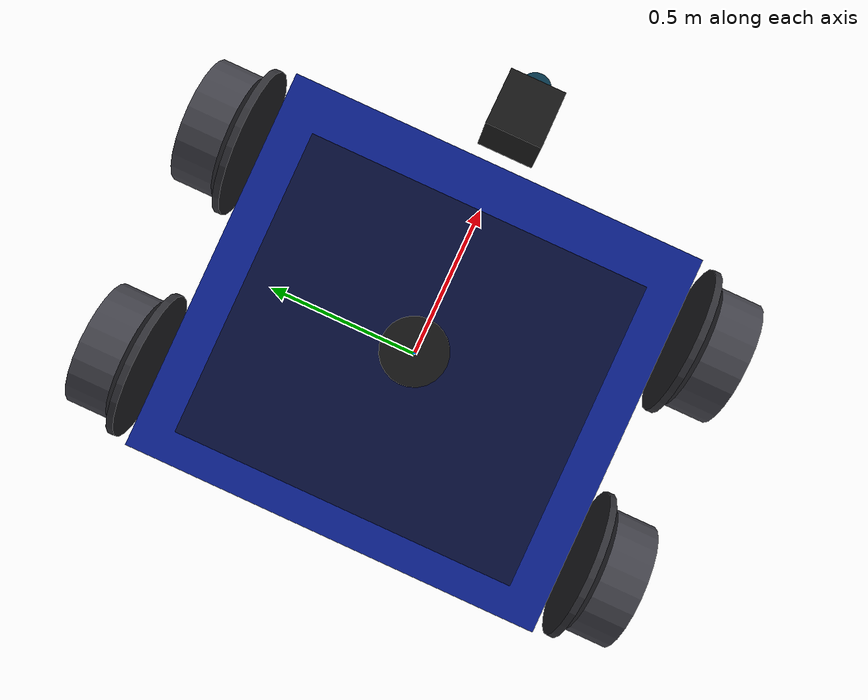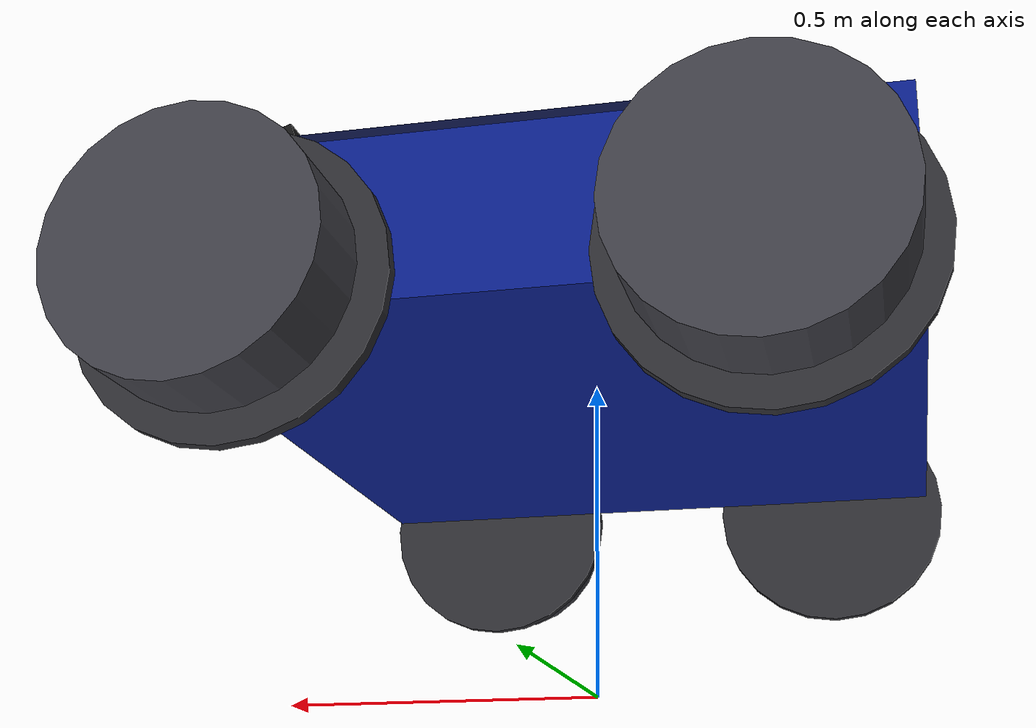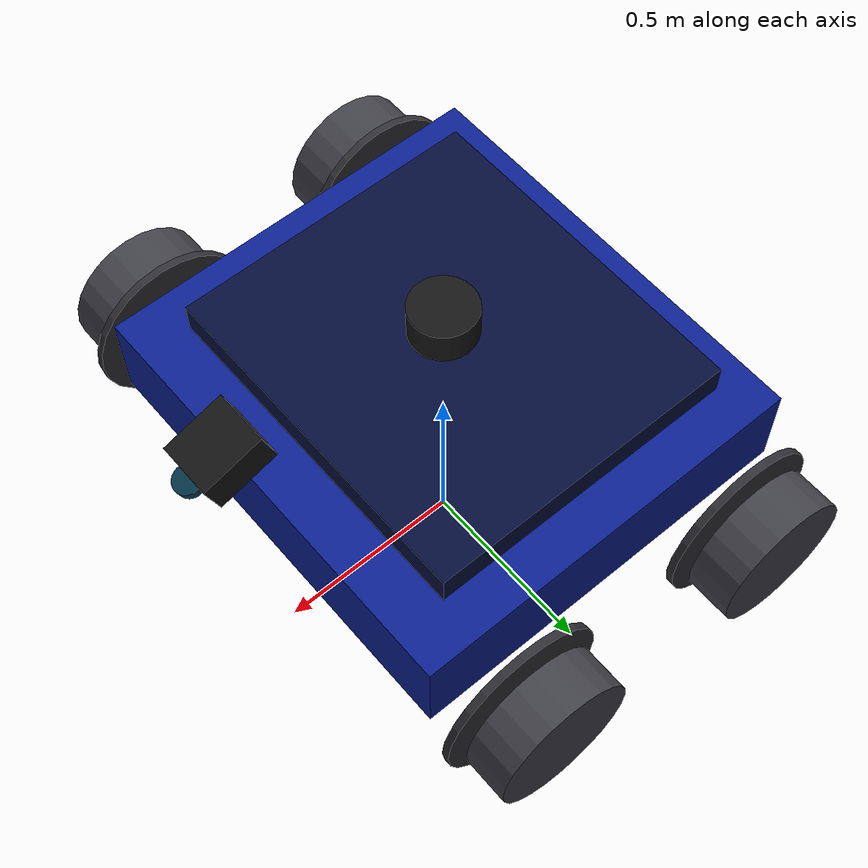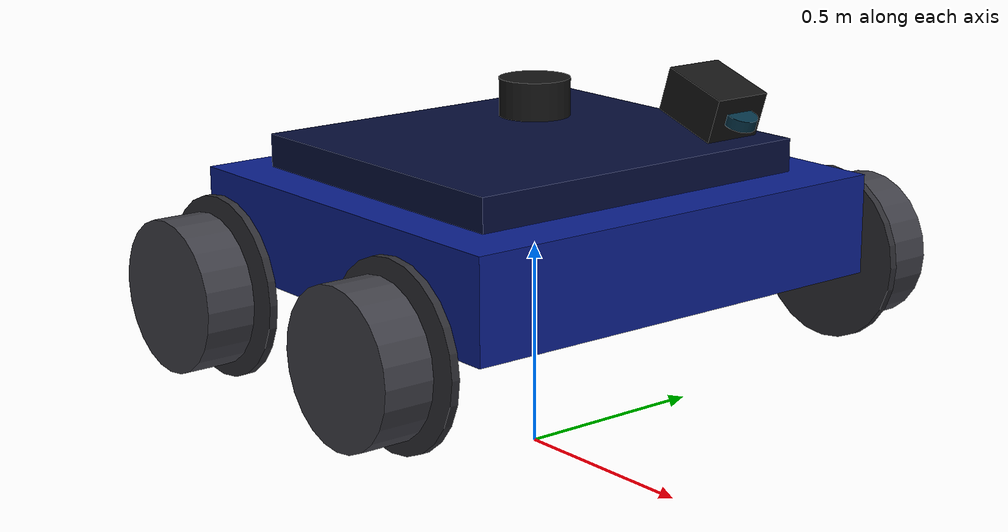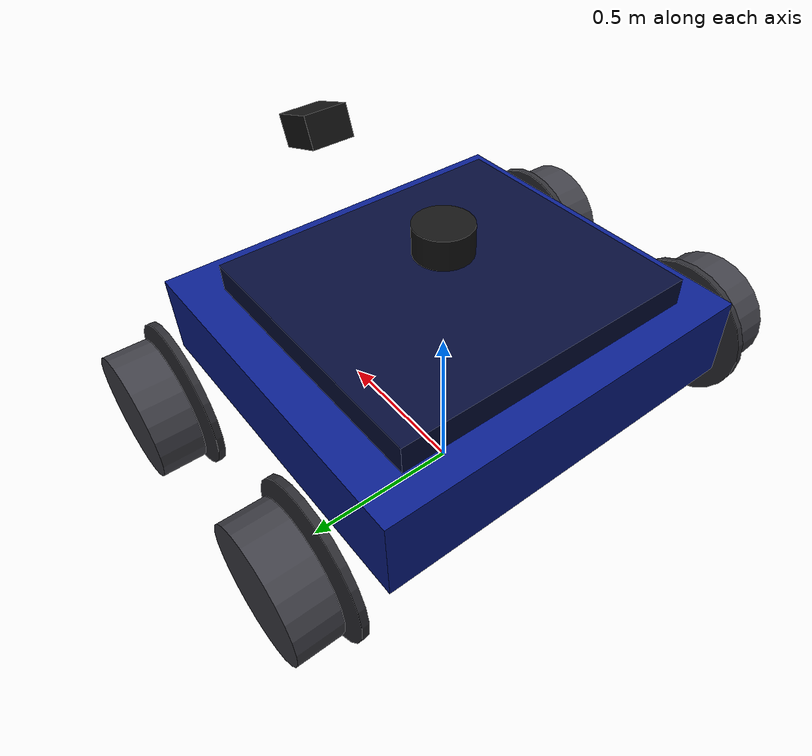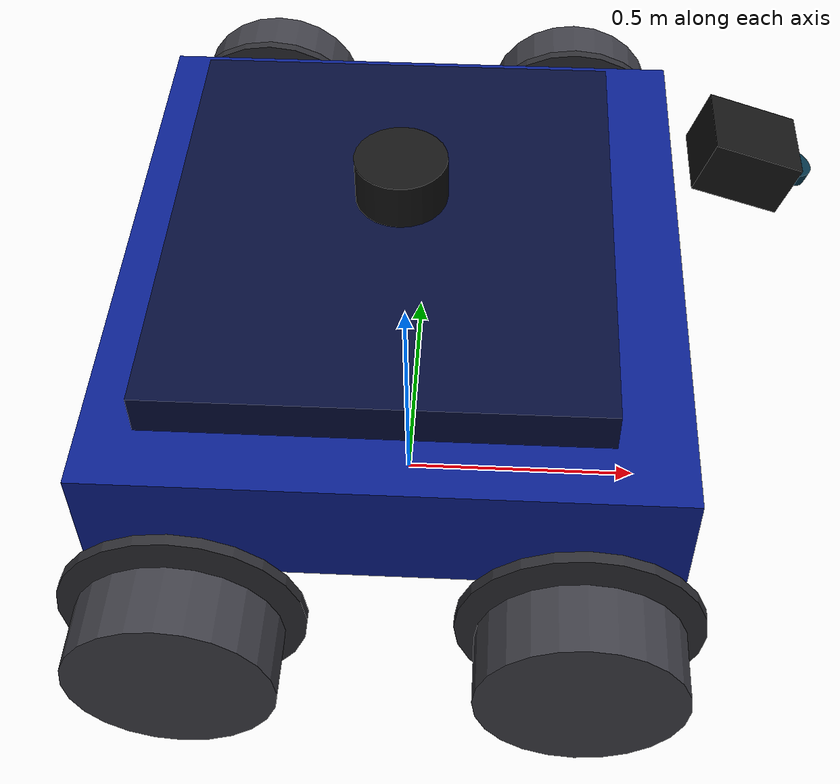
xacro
<?xml version="1.0"?>
<robot name="railway_rover" xmlns:xacro="http://www.ros.org/wiki/xacro">

  <!-- ROBOT PARAMETERS                                         -->

  <xacro:property name="base_length" value="1.05"/>
  <xacro:property name="base_width"  value="1.15"/>
  <xacro:property name="base_height" value="0.24"/>

  <xacro:property name="wheel_radius"       value="0.18"/>
  <xacro:property name="wheel_tread_width"  value="0.12"/>
  <xacro:property name="flange_radius"      value="0.215"/>
  <xacro:property name="flange_width"       value="0.02"/>
  <xacro:property name="wheel_mass"         value="2.0"/>

  <xacro:property name="base_mass" value="20.0"/>

  <!-- Railway geometry -->
  <xacro:property name="rail_gauge" value="1.50"/>
  <xacro:property name="wheel_y"    value="0.75"/>
  <xacro:property name="rail_top_z" value="0.26"/>

  <!-- MATERIALS                                                 -->

  <material name="rover_blue">
    <color rgba="0.04 0.12 0.55 1.0"/>
  </material>

  <material name="rover_blue_dark">
    <color rgba="0.02 0.05 0.22 1.0"/>
  </material>

  <material name="wheel_metal">
    <color rgba="0.25 0.25 0.28 1.0"/>
  </material>

  <material name="wheel_flange_mat">
    <color rgba="0.18 0.18 0.20 1.0"/>
  </material>

  <material name="sensor_dark">
    <color rgba="0.08 0.08 0.08 1.0"/>
  </material>

  <material name="sensor_glass">
    <color rgba="0.02 0.20 0.28 1.0"/>
  </material>

  <!-- BASE FOOTPRINT                                             -->

  <link name="base_footprint"/>

  <!-- MAIN CHASSIS                                               -->

  <link name="base_link">

    <inertial>
      <mass value="${base_mass}"/>
      <origin xyz="0 0 0"/>
      <inertia
        ixx="2.0"
        ixy="0"
        ixz="0"
        iyy="3.0"
        iyz="0"
        izz="3.5"/>
    </inertial>

    <visual name="main_chassis">
      <origin xyz="0 0 0"/>
      <geometry>
        <box size="${base_length} ${base_width} ${base_height}"/>
      </geometry>
      <material name="rover_blue"/>
    </visual>

    <visual name="upper_deck">
      <origin xyz="-0.02 0 0.15"/>
      <geometry>
        <box size="0.82 0.92 0.10"/>
      </geometry>
      <material name="rover_blue_dark"/>
    </visual>

    <collision name="main_collision">
      <origin xyz="0 0 0"/>
      <geometry>
        <box size="${base_length} ${base_width} ${base_height}"/>
      </geometry>
    </collision>

  </link>

  <!-- Base is positioned above the rail-running wheels. -->
  <joint name="base_footprint_joint" type="fixed">
    <parent link="base_footprint"/>
    <child link="base_link"/>
    <origin
      xyz="0 0 ${rail_top_z + wheel_radius + base_height/2}"
      rpy="0 0 0"/>
  </joint>

  <!-- FLANGED RAILWAY WHEELS                                    -->

  <xacro:macro name="wheel" params="name x y flange_offset">

    <link name="${name}_wheel">

      <inertial>
        <mass value="${wheel_mass}"/>
        <origin xyz="0 0 0"/>
        <inertia
          ixx="0.03"
          ixy="0"
          ixz="0"
          iyy="0.03"
          iyz="0"
          izz="0.03"/>
      </inertial>

      <!-- Wheel tread running on top of rail head -->
      <visual name="tread_visual">
        <origin xyz="0 0 0" rpy="${pi/2} 0 0"/>
        <geometry>
          <cylinder
            radius="${wheel_radius}"
            length="${wheel_tread_width}"/>
        </geometry>
        <material name="wheel_metal"/>
      </visual>

      <!-- Railway wheel flange (inner rim) preventing derailment -->
      <visual name="flange_visual">
        <origin xyz="0 ${flange_offset} 0" rpy="${pi/2} 0 0"/>
        <geometry>
          <cylinder
            radius="${flange_radius}"
            length="${flange_width}"/>
        </geometry>
        <material name="wheel_flange_mat"/>
      </visual>

      <!-- Tread collision -->
      <collision name="tread_collision">
        <origin xyz="0 0 0" rpy="${pi/2} 0 0"/>
        <geometry>
          <cylinder
            radius="${wheel_radius}"
            length="${wheel_tread_width}"/>
        </geometry>
      </collision>

      <!-- Flange collision -->
      <collision name="flange_collision">
        <origin xyz="0 ${flange_offset} 0" rpy="${pi/2} 0 0"/>
        <geometry>
          <cylinder
            radius="${flange_radius}"
            length="${flange_width}"/>
        </geometry>
      </collision>

    </link>

    <!-- Calibrated contact dynamics: strong forward traction, smooth lateral sliding -->
    <gazebo reference="${name}_wheel">
      <mu1>1.0</mu1>
      <mu2>0.05</mu2>
      <fdir1>1 0 0</fdir1>
      <kp>1000000.0</kp>
      <kd>10.0</kd>
      <minDepth>0.001</minDepth>
      <maxVel>5.0</maxVel>
      <material>Gazebo/DarkGrey</material>
    </gazebo>

    <joint name="${name}_wheel_joint" type="continuous">
      <parent link="base_link"/>
      <child link="${name}_wheel"/>
      <origin
        xyz="${x} ${y} ${-base_height/2}"
        rpy="0 0 0"/>
      <axis xyz="0 1 0"/>
    </joint>

  </xacro:macro>

  <!-- Left wheels: flange offset is -0.075 (toward center of track) -->
  <xacro:wheel
    name="rear_left"
    x="-0.34"
    y="${wheel_y}"
    flange_offset="-0.09"/>

  <xacro:wheel
    name="front_left"
    x="0.34"
    y="${wheel_y}"
    flange_offset="-0.09"/>

  <!-- Right wheels: flange offset is +0.075 (toward center of track) -->
  <xacro:wheel
    name="rear_right"
    x="-0.34"
    y="-${wheel_y}"
    flange_offset="0.09"/>

  <xacro:wheel
    name="front_right"
    x="0.34"
    y="-${wheel_y}"
    flange_offset="0.09"/>

  <!-- CAMERA LINK & PAN JOINT                                   -->

  <link name="camera_link">

    <inertial>
      <origin xyz="0 0 0" rpy="0 0 0"/>
      <mass value="0.15"/>
      <inertia
        ixx="0.0001" ixy="0.0" ixz="0.0"
        iyy="0.0001" iyz="0.0"
        izz="0.0001"/>
    </inertial>

    <visual name="camera_body">
      <origin xyz="0 0 0" rpy="0 0.32 0"/>
      <geometry>
        <box size="0.16 0.14 0.10"/>
      </geometry>
      <material name="sensor_dark"/>
    </visual>

    <visual name="camera_lens">
      <origin xyz="0.085 0 -0.027" rpy="0 0.32 0"/>
      <geometry>
        <cylinder radius="0.035" length="0.025"/>
      </geometry>
      <material name="sensor_glass"/>
    </visual>

  </link>

  <!-- Stepper-driven camera pan -->
  <joint name="camera_pan_joint" type="revolute">
    <parent link="base_link"/>
    <child link="camera_link"/>
    <origin xyz="0.60 0 0.38" rpy="0 0 0"/>
    <axis xyz="0 0 1"/>
    <limit
      lower="-0.523599"
      upper="0.523599"
      effort="10.0"
      velocity="1.0"/>
    <dynamics
      damping="0.5"
      friction="0.1"/>
  </joint>

  <!-- Optical sensor mount angled downward 18.3 deg for track inspection -->
  <link name="camera_sensor_link">
    <inertial>
      <origin xyz="0 0 0" rpy="0 0 0"/>
      <mass value="0.01"/>
      <inertia
        ixx="0.000001" ixy="0.0" ixz="0.0"
        iyy="0.000001" iyz="0.0"
        izz="0.000001"/>
    </inertial>
  </link>

  <joint name="camera_sensor_joint" type="fixed">
    <parent link="camera_link"/>
    <child link="camera_sensor_link"/>
    <origin xyz="0.14 0 0" rpy="0 0.32 0"/>
  </joint>

  <!-- Standard ROS optical frame -->
  <link name="camera_optical_frame"/>

  <joint name="camera_optical_joint" type="fixed">
    <parent link="camera_sensor_link"/>
    <child link="camera_optical_frame"/>
    <origin xyz="0 0 0" rpy="-1.5708 0 -1.5708"/>
  </joint>

  <!-- Gazebo ROS control interface -->
  <gazebo>
    <plugin name="gazebo_ros_control" filename="libgazebo_ros_control.so">
      <robotNamespace>/railway_rover</robotNamespace>
      <robotParam>/robot_description</robotParam>
    </plugin>
  </gazebo>

  <!-- Camera pan motor transmission -->
  <transmission name="camera_pan_transmission">
    <type>transmission_interface/SimpleTransmission</type>
    <joint name="camera_pan_joint">
      <hardwareInterface>hardware_interface/PositionJointInterface</hardwareInterface>
    </joint>
    <actuator name="camera_pan_motor">
      <hardwareInterface>hardware_interface/PositionJointInterface</hardwareInterface>
      <mechanicalReduction>1</mechanicalReduction>
    </actuator>
  </transmission>

  <!-- 3D LIDAR                                                  -->

  <link name="lidar_link">
    <visual name="lidar_body">
      <geometry>
        <cylinder
          radius="0.085"
          length="0.09"/>
      </geometry>
      <material name="sensor_dark"/>
    </visual>
  </link>

  <joint name="lidar_joint" type="fixed">
    <parent link="base_link"/>
    <child link="lidar_link"/>
    <origin
      xyz="0 0 0.30"
      rpy="0 0 0"/>
  </joint>

  <!-- IMU                                                        -->

  <link name="imu_link">
    <visual>
      <geometry>
        <box size="0.07 0.05 0.025"/>
      </geometry>
      <material name="sensor_dark"/>
    </visual>
  </link>

  <joint name="imu_joint" type="fixed">
    <parent link="base_link"/>
    <child link="imu_link"/>
    <origin
      xyz="-0.20 0 0.02"
      rpy="0 0 0"/>
  </joint>

  <!-- GAZEBO RGB CAMERA                                         -->

  <gazebo reference="camera_sensor_link">
    <preserveFixedJoint>true</preserveFixedJoint>

    <sensor type="camera" name="rgb_camera">
      <update_rate>15</update_rate>
      <camera>
        <horizontal_fov>1.047</horizontal_fov>
        <image>
          <width>640</width>
          <height>480</height>
          <format>R8G8B8</format>
        </image>
        <clip>
          <near>0.05</near>
          <far>30.0</far>
        </clip>
      </camera>

      <plugin
        name="camera_controller"
        filename="libgazebo_ros_camera.so">
        <cameraName>railway_rover_camera</cameraName>
        <imageTopicName>/camera/image_raw</imageTopicName>
        <cameraInfoTopicName>/camera/camera_info</cameraInfoTopicName>
        <frameName>camera_optical_frame</frameName>
      </plugin>
    </sensor>
  </gazebo>

  <!-- GAZEBO 3D LIDAR                                           -->

  <gazebo reference="lidar_link">
    <sensor type="ray" name="lidar_sensor">
      <update_rate>10</update_rate>
      <ray>
        <scan>
          <horizontal>
            <samples>360</samples>
            <resolution>1</resolution>
            <min_angle>-3.14159</min_angle>
            <max_angle>3.14159</max_angle>
          </horizontal>
          <vertical>
            <samples>16</samples>
            <resolution>1</resolution>
            <min_angle>-0.35</min_angle>
            <max_angle>0.35</max_angle>
          </vertical>
        </scan>
        <range>
          <min>0.12</min>
          <max>25.0</max>
          <resolution>0.01</resolution>
        </range>
      </ray>

      <plugin
        name="lidar_controller"
        filename="libgazebo_ros_block_laser.so">
        <topicName>/lidar/points</topicName>
        <frameName>lidar_link</frameName>
      </plugin>
    </sensor>
  </gazebo>

  <!-- 4-WHEEL DRIVE CONTROLLER (SKID STEER)                     -->

  <gazebo>
    <plugin name="skid_steer_drive_controller" filename="libgazebo_ros_skid_steer_drive.so">
      <updateRate>50.0</updateRate>
      <robotNamespace>/</robotNamespace>
      <leftFrontJoint>front_left_wheel_joint</leftFrontJoint>
      <rightFrontJoint>front_right_wheel_joint</rightFrontJoint>
      <leftRearJoint>rear_left_wheel_joint</leftRearJoint>
      <rightRearJoint>rear_right_wheel_joint</rightRearJoint>
      <wheelSeparation>1.50</wheelSeparation>
      <wheelDiameter>0.36</wheelDiameter>
      <robotBaseFrame>base_footprint</robotBaseFrame>
      <torque>100</torque>
      <topicName>cmd_vel</topicName>
      <odometryTopic>odom</odometryTopic>
      <odometryFrame>odom</odometryFrame>
      <broadcastTF>true</broadcastTF>
      <covariance_x>0.0001</covariance_x>
      <covariance_y>0.0001</covariance_y>
      <covariance_yaw>0.0001</covariance_yaw>
    </plugin>
  </gazebo>

  <!-- GAZEBO IMU                                                -->

  <gazebo>
    <plugin name="imu_controller" filename="libgazebo_ros_imu.so">
      <topicName>/imu/data</topicName>
      <bodyName>base_link</bodyName>
      <frameName>imu_link</frameName>
      <updateRate>100.0</updateRate>
      <gaussianNoise>0.0</gaussianNoise>
    </plugin>
  </gazebo>

</robot>
